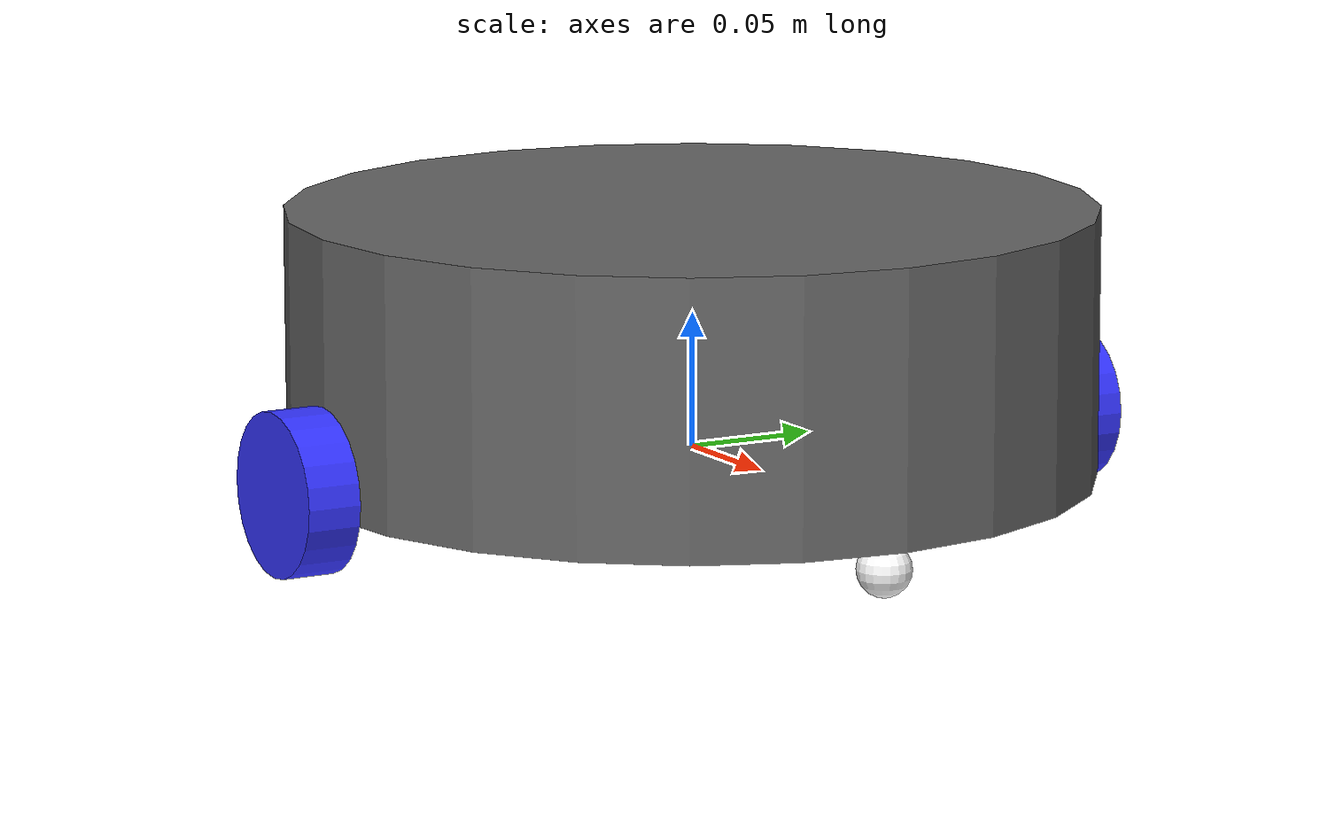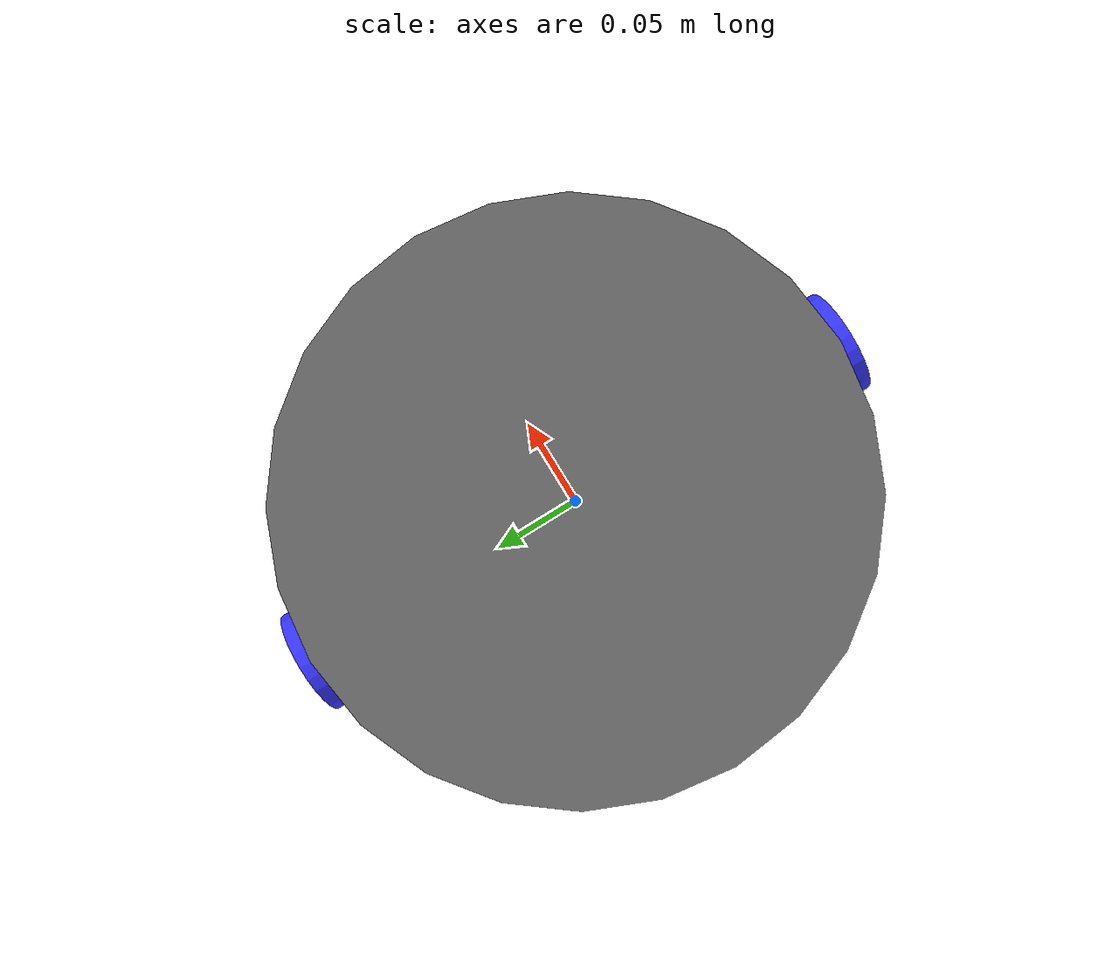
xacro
<?xml version="1.0"?>
<robot xmlns:xacro="http://www.ros.org/wiki/xacro">

    <xacro:include filename="inertial_macros.xacro" />
    <xacro:include filename="dimensions.xacro" />

    <material name="white">
        <color rgba="1 1 1 1" />
    </material>

    <material name="grey">
        <color rgba="0.4 0.4 0.4 1" />
    </material>

    <material name="blue">
        <color rgba="0.2 0.2 1 1" />
    </material>

    <material name="black">
        <color rgba="0 0 0 1" />
    </material>

    <material name="red">
        <color rgba="1 0 0 1" />
    </material>

    <!-- BASE LINK -->

    <link name="base_link" />

    <!-- BASE_FOOTPRINT LINK -->

    <joint name="base_footprint_joint" type="fixed">
        <parent link="base_link" />
        <child link="base_footprint" />
        <origin xyz="0 0 0" rpy="0 0 0" />
    </joint>

    <link name="base_footprint"/>

    <!-- CHASSIS LINK -->

    <joint name="chassis_joint" type="fixed">
        <parent link="base_link" />
        <child link="chassis" />
        <origin xyz="0 0 ${-wheel_offset_z}" />
    </joint>

    <link name="chassis">
        <visual>
            <origin xyz="0 0 ${chassis_length/2}" />
            <geometry>
                <cylinder radius="${chassis_radius}" length="${chassis_length}" />
            </geometry>
            <material name="grey" />
        </visual>
        <collision>
            <origin xyz="0 0 ${chassis_length/2}" />
            <geometry>
                <cylinder radius="${chassis_radius}" length="${chassis_length}" />
            </geometry>
        </collision>
        <xacro:inertial_cylinder mass="${chassis_mass}" length="${chassis_length}" radius="${chassis_radius}">
            <origin xyz="0 0 ${chassis_length/2}" rpy="0 0 0" />
        </xacro:inertial_cylinder>
    </link>

    <!-- LEFT WHEEL LINK -->

    <joint name="left_wheel_joint" type="continuous">
        <parent link="base_link" />
        <child link="left_wheel" />
        <origin xyz="0 ${wheel_offset_y} 0" rpy="-${pi/2} 0 0" />
        <axis xyz="0 0 1" />
    </joint>

    <link name="left_wheel">
        <visual>
            <geometry>
                <cylinder radius="${wheel_radius}" length="${wheel_thickness}" />
            </geometry>
            <material name="blue" />
        </visual>
        <collision>
            <geometry>
                <sphere radius="${wheel_radius}" />
            </geometry>
        </collision>
        <xacro:inertial_cylinder mass="${wheel_mass}" length="${wheel_thickness}"
            radius="${wheel_radius}">
            <origin xyz="0 0 0" rpy="0 0 0" />
        </xacro:inertial_cylinder>
    </link>

    <gazebo reference="left_wheel">
        <material>Gazebo/Blue</material>
    </gazebo>

    <!-- RIGHT WHEEL LINK -->

    <joint name="right_wheel_joint" type="continuous">
        <parent link="base_link" />
        <child link="right_wheel" />
        <origin xyz="0 ${-wheel_offset_y} 0" rpy="${pi/2} 0 0" />
        <axis xyz="0 0 -1" />
    </joint>

    <link name="right_wheel">
        <visual>
            <geometry>
                <cylinder radius="${wheel_radius}" length="${wheel_thickness}" />
            </geometry>
            <material name="blue" />
        </visual>
        <collision>
            <geometry>
                <sphere radius="${wheel_radius}" />
            </geometry>
        </collision>
        <xacro:inertial_cylinder mass="${wheel_mass}" length="${wheel_thickness}"
            radius="${wheel_radius}">
            <origin xyz="0 0 0" rpy="0 0 0" />
        </xacro:inertial_cylinder>
    </link>

    <gazebo reference="right_wheel">
        <material>Gazebo/Blue</material>
    </gazebo>

    <!-- CASTER WHEEL LINKS -->

    <joint name="caster_front_joint" type="fixed">
        <parent link="chassis" />
        <child link="caster_wheel_front" />
        <origin xyz="${caster_wheel_offset_x} 0 ${caster_wheel_offset_z+0.001}" />
    </joint>

    <link name="caster_wheel_front">
        <visual>
            <geometry>
                <sphere radius="${caster_wheel_radius}" />
            </geometry>
            <material name="white" />
        </visual>
        <collision>
            <geometry>
                <sphere radius="${caster_wheel_radius}" />
            </geometry>
        </collision>
        <xacro:inertial_sphere mass="${caster_wheel_mass}" radius="${caster_wheel_radius}">
            <origin xyz="0 0 0" rpy="0 0 0" />
        </xacro:inertial_sphere>
    </link>

    <gazebo reference="caster_wheel_front">
        <material>Gazebo/White</material>
        <mu1 value="0" />
        <mu2 value="0" />
    </gazebo>

    <joint name="caster_back_joint" type="fixed">
        <parent link="chassis" />
        <child link="caster_wheel_back" />
        <origin xyz="${-caster_wheel_offset_x} 0 ${caster_wheel_offset_z+0.001}" />
    </joint>

    <link name="caster_wheel_back">
        <visual>
            <geometry>
                <sphere radius="${caster_wheel_radius}" />
            </geometry>
            <material name="white" />
        </visual>
        <collision>
            <geometry>
                <sphere radius="${caster_wheel_radius}" />
            </geometry>
        </collision>
        <xacro:inertial_sphere mass="${caster_wheel_mass}" radius="${caster_wheel_radius}">
            <origin xyz="0 0 0" rpy="0 0 0" />
        </xacro:inertial_sphere>
    </link>

    <gazebo reference="caster_wheel_back">
        <material>Gazebo/White</material>
        <mu1 value="0" />
        <mu2 value="0" />
    </gazebo>

</robot>

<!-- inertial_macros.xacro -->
<robot xmlns:xacro="http://www.ros.org/wiki/xacro">
    <!-- Specify some standard inertial calculations -->
    <!-- https://en.wikipedia.org/wiki/List_of_moments_of_inertia  -->
    <!-- These make use of xacro's mathematical functionality -->

    <xacro:macro name="inertial_sphere" params="mass radius *origin">
        <inertial>
            <xacro:insert_block name="origin" />
            <mass value="${mass}" />
            <inertia ixx="${(2/5) * mass * (radius*radius)}" ixy="0.0" ixz="0.0"
                iyy="${(2/5) * mass * (radius*radius)}" iyz="0.0"
                izz="${(2/5) * mass * (radius*radius)}" />
        </inertial>
    </xacro:macro>

    <xacro:macro name="inertial_box" params="mass x y z *origin">
        <inertial>
            <xacro:insert_block name="origin" />
            <mass value="${mass}" />
            <inertia ixx="${(1/12) * mass * (y*y+z*z)}" ixy="0.0" ixz="0.0"
                iyy="${(1/12) * mass * (x*x+z*z)}" iyz="0.0"
                izz="${(1/12) * mass * (x*x+y*y)}" />
        </inertial>
    </xacro:macro>

    <xacro:macro name="inertial_cylinder" params="mass length radius *origin">
        <inertial>
            <xacro:insert_block name="origin" />
            <mass value="${mass}" />
            <inertia ixx="${(1/12) * mass * (3*radius*radius + length*length)}" ixy="0.0" ixz="0.0"
                iyy="${(1/12) * mass * (3*radius*radius + length*length)}" iyz="0.0"
                izz="${(1/2) * mass * (radius*radius)}" />
        </inertial>
    </xacro:macro>
</robot>

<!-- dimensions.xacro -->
<robot xmlns:xacro="http://www.ros.org/wiki/xacro">
    <xacro:property name="chassis_length" value="0.10" />
    <xacro:property name="chassis_radius" value="0.15" />
    <xacro:property name="chassis_mass" value="1.0" />
    <xacro:property name="wheel_radius" value="0.03" />
    <xacro:property name="wheel_thickness" value="0.02" />
    <xacro:property name="wheel_mass" value="0.05" />
    <xacro:property name="wheel_offset_y" value="${chassis_radius + wheel_thickness/2 + 0.001}" />
    <xacro:property name="wheel_offset_z" value="0.01" />
    <xacro:property name="caster_wheel_radius" value="0.01" />
    <xacro:property name="caster_wheel_mass" value="0.01" />
    <xacro:property name="caster_wheel_offset_x" value="${chassis_radius * 0.9}" />
    <xacro:property name="caster_wheel_offset_z"
        value="${wheel_offset_z - wheel_radius + caster_wheel_radius}" />
</robot>
